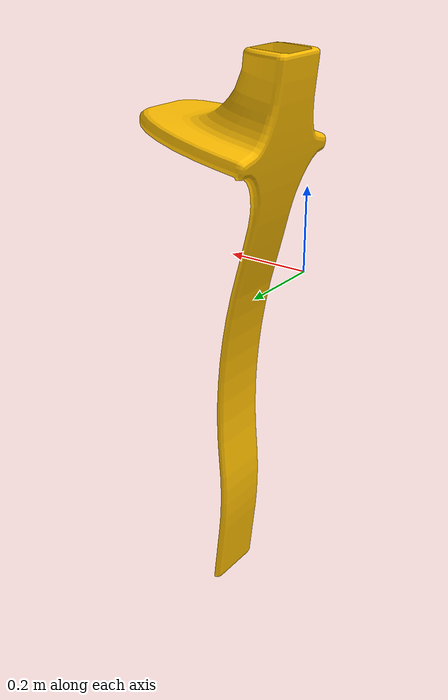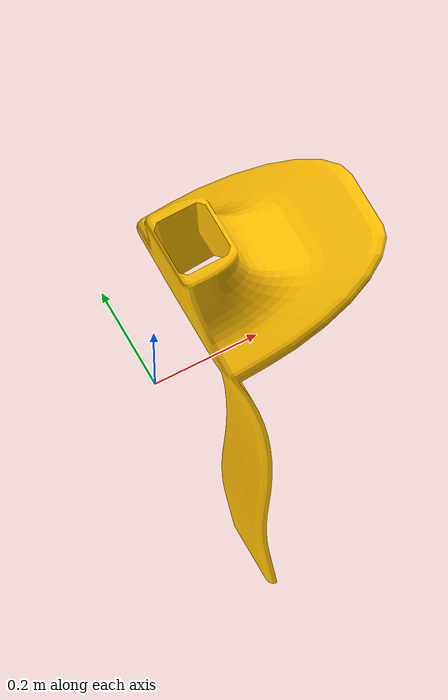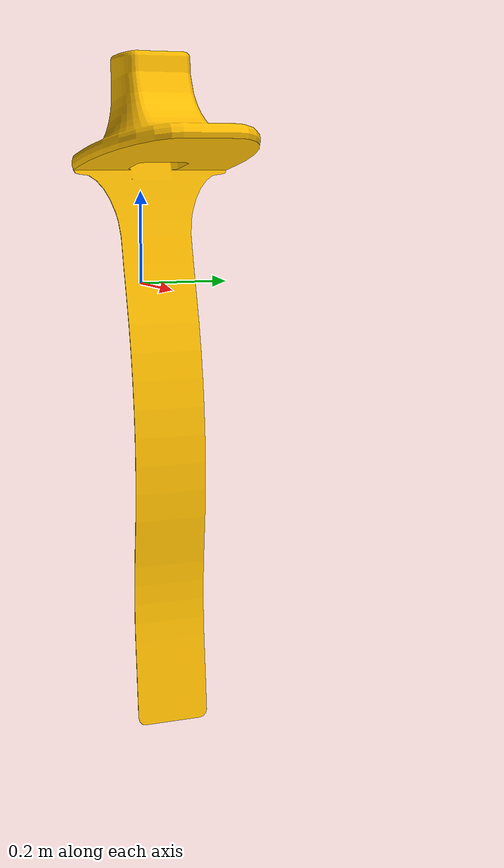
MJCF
<mujoco model="original-7">
  <default>
    <default class="visual">
      <geom group="2" type="mesh" contype="0" conaffinity="0"/>
    </default>
    <default class="collision">
      <geom group="3" type="mesh"/>
    </default>
  </default>
  <asset>
    <material name="material_0_0" specular="0.06666666666666667" shininess="0.03" rgba="1 0.7450980392156863 0 1"/>
    <mesh file="original-7.obj"/>
  </asset>
  <worldbody>
    <body name="original-7">
      <geom material="material_0_0" mesh="original-7" class="visual"/>
      <geom mesh="original-7" class="collision"/>
    </body>
  </worldbody>
</mujoco>
